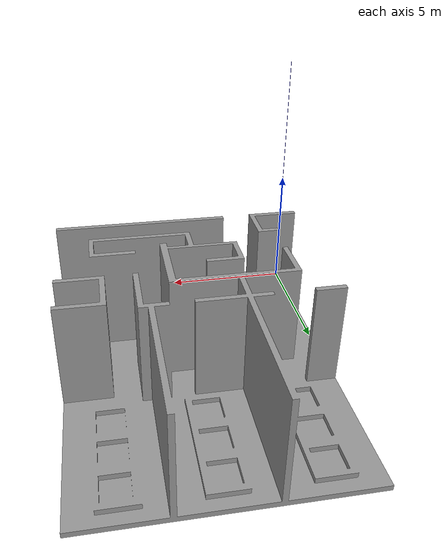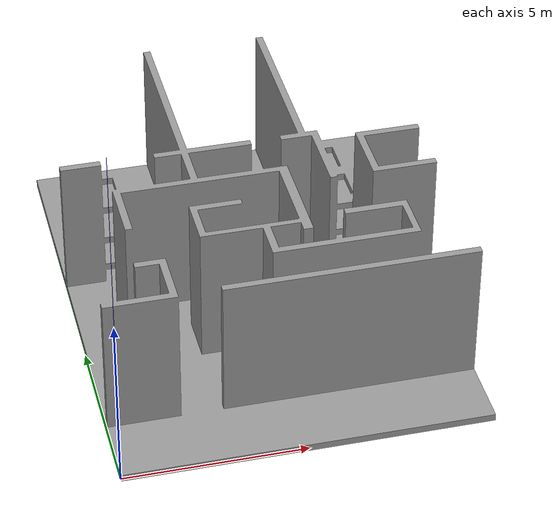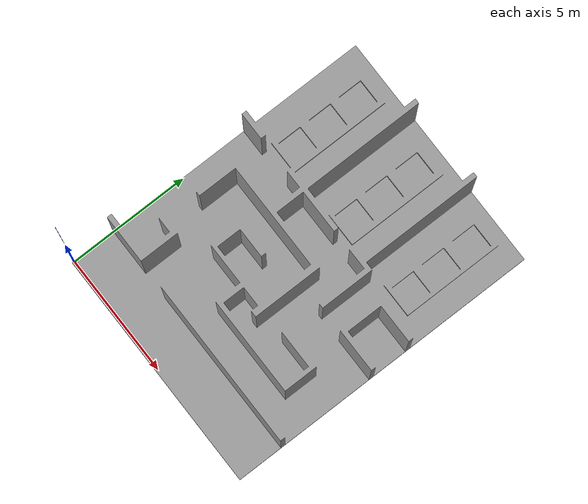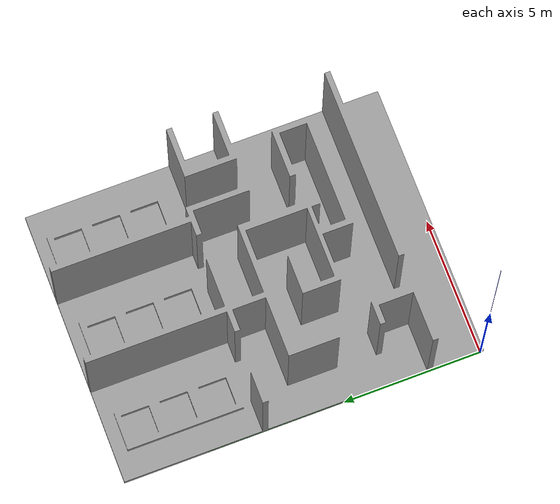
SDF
<sdf version="1.9">
 <world name="arena_d1">
  <physics name="1ms" type="ignore">
   <max_step_size>0.001</max_step_size>
   <real_time_factor>1.0</real_time_factor>
  </physics>
  <plugin filename="gz-sim-physics-system" name="gz::sim::systems::Physics"/>
  <plugin filename="gz-sim-sensors-system" name="gz::sim::systems::Sensors">
   <render_engine>ogre2</render_engine>
  </plugin>
  <plugin filename="gz-sim-user-commands-system" name="gz::sim::systems::UserCommands"/>
  <plugin filename="gz-sim-scene-broadcaster-system" name="gz::sim::systems::SceneBroadcaster"/>
  <plugin filename="gz-sim-imu-system" name="gz::sim::systems::Imu"/>
  <plugin filename="gz-sim-navsat-system" name="gz::sim::systems::NavSat"/>
  <scene><ambient>1.0 1.0 1.0</ambient><background>0.8 0.8 0.8</background></scene>
  <spherical_coordinates>
   <latitude_deg>-35.363262</latitude_deg>
   <longitude_deg>149.165237</longitude_deg>
   <elevation>584</elevation>
   <heading_deg>0</heading_deg>
   <surface_model>EARTH_WGS84</surface_model>
  </spherical_coordinates>
  <light type="directional" name="sun">
   <pose>0 0 10 0 0 0</pose>
   <diffuse>0.8 0.8 0.8 1</diffuse>
   <specular>0.8 0.8 0.8 1</specular>
   <attenuation>
    <range>1000</range>
    <constant>0.9</constant>
    <linear>0.01</linear>
    <quadratic>0.001</quadratic>
   </attenuation>
   <direction>-0.5 0.1 -0.9</direction>
  </light>
  <model name="axes">
   <static>1</static>
   <link name="link">
    <visual name="r">
     <cast_shadows>0</cast_shadows>
     <pose>5 0 0.1 0 0 0</pose>
     <geometry><box><size>10 0.01 0.01</size></box></geometry>
     <material>
      <ambient>1 0 0 0.8</ambient>
      <diffuse>1 0 0 0.8</diffuse>
      <emissive>1 0 0 0.8</emissive>
      <specular>0.5 0.5 0.5 0.8</specular>
     </material>
    </visual>
    <visual name="g">
     <cast_shadows>0</cast_shadows>
     <pose>0 5 0.1 0 0 0</pose>
     <geometry><box><size>0.01 10 0.01</size></box></geometry>
     <material>
      <ambient>0 1 0 0.8</ambient>
      <diffuse>0 1 0 0.8</diffuse>
      <emissive>0 1 0 0.8</emissive>
      <specular>0.5 0.5 0.5 0.8</specular>
     </material>
    </visual>
    <visual name="b">
     <cast_shadows>0</cast_shadows>
     <pose>0 0 5.1 0 0 0</pose>
     <geometry><box><size>0.01 0.01 10</size></box></geometry>
     <material>
      <ambient>0 0 1 0.8</ambient>
      <diffuse>0 0 1 0.8</diffuse>
      <emissive>0 0 1 0.8</emissive>
      <specular>0.5 0.5 0.5 0.8</specular>
     </material>
    </visual>
    <sensor name="navsat_sensor" type="navsat"><always_on>1</always_on><update_rate>1</update_rate></sensor>
   </link>
  </model>
  <include><uri>model://arena_d1</uri><pose degrees="true">0 13.0 0.01 0 0 0</pose></include>
 </world>
</sdf>

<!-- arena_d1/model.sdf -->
<sdf version="1.9">
  <model name="arena_d1">
  <static>true</static>
    <link name="link">
      <inertial>
        <mass>5.0</mass>
        <inertia>
          <ixx>9.108e-05</ixx>
          <ixy>0</ixy>
          <ixz>0</ixz>
          <iyy>2.51e-06</iyy>
          <iyz>0</iyz>
          <izz>8.931e-05</izz>
        </inertia>
      </inertial>
      <visual name="visual">
        <pose>0 0 0 0 0 0</pose>
        <geometry>
          <mesh>
            <uri>model://arena_d1/meshes/Maze_D1.stl</uri>
          </mesh>
        </geometry>
        <material>
            <ambient>0.4 0.4 0.4 1</ambient>
            <diffuse>0.6 0.6 0.6 1</diffuse>
            <specular>0.5 0.5 0.5 1</specular>
        </material>
      </visual>

      <collision name="collision">
        <geometry>
          <mesh>
            <uri>model://arena_d1/meshes/Maze_D1.stl</uri>
          </mesh>
        </geometry>
      </collision>
    </link>
  </model>
</sdf>
